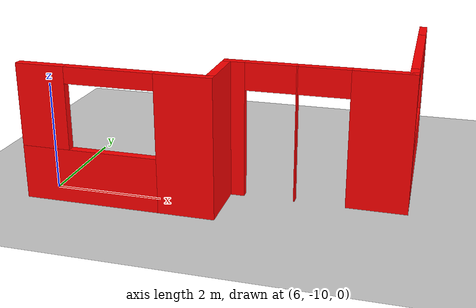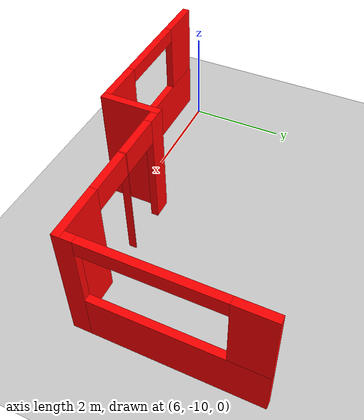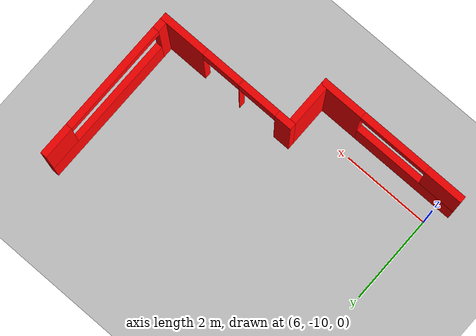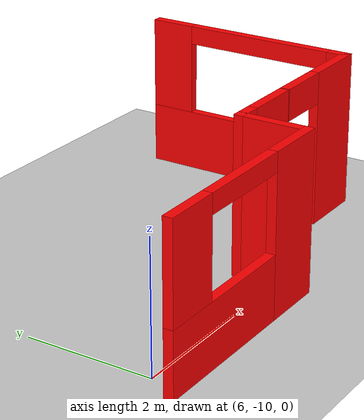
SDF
<sdf version="1.6">
 <world name="default">
  <model name="ground_plane">
   <static>1</static>
   <link name="link">
    <collision name="collision">
     <geometry><plane><normal>0 0 1</normal><size>100 100</size></plane></geometry>
     <surface><friction><ode><mu>100</mu><mu2>50</mu2></ode></friction></surface>
    </collision>
    <visual name="visual">
     <cast_shadows>0</cast_shadows>
     <geometry><plane><normal>0 0 1</normal><size>100 100</size></plane></geometry>
     <material>
      <script><uri>file://media/materials/scripts/gazebo.material</uri><name>Gazebo/Grey</name></script>
     </material>
    </visual>
   </link>
  </model>
  <model name="1floorHouse">
   <link name="Wall_338">
    <pose>7.8602 -3.07643 0 0 -0 1.5708</pose>
    <visual name="Wall_338_Visual_0">
     <pose>-1.61551 0 1.25 0 -0 0</pose>
     <geometry><box><size>0.368981 0.15 2.5</size></box></geometry>
     <material>
      <script><uri>file://media/materials/scripts/gazebo.material</uri><name>Gazebo/Grey</name></script>
      <ambient>1 0 0 1</ambient>
      <diffuse>0.7 0.7 0.7 1</diffuse>
      <specular>0.01 0.01 0.01 1</specular>
      <emissive>0 0 0 1</emissive>
     </material>
    </visual>
    <visual name="Wall_338_Visual_1">
     <pose>0.18449 0 0.5 0 -0 0</pose>
     <geometry><box><size>3.23102 0.15 1</size></box></geometry>
     <material>
      <script><uri>file://media/materials/scripts/gazebo.material</uri><name>Gazebo/Grey</name></script>
      <ambient>1 0 0 1</ambient>
      <diffuse>0.7 0.7 0.7 1</diffuse>
      <specular>0.01 0.01 0.01 1</specular>
      <emissive>0 0 0 1</emissive>
     </material>
    </visual>
    <visual name="Wall_338_Visual_2">
     <pose>1.43449 0 1.75 0 -0 0</pose>
     <geometry><box><size>0.731019 0.15 1.5</size></box></geometry>
     <material>
      <script><uri>file://media/materials/scripts/gazebo.material</uri><name>Gazebo/Grey</name></script>
      <ambient>1 0 0 1</ambient>
      <diffuse>0.7 0.7 0.7 1</diffuse>
      <specular>0.01 0.01 0.01 1</specular>
      <emissive>0 0 0 1</emissive>
     </material>
    </visual>
    <visual name="Wall_338_Visual_3">
     <pose>-0.181019 0 2.35 0 -0 0</pose>
     <geometry><box><size>2.5 0.15 0.3</size></box></geometry>
     <material>
      <script><uri>file://media/materials/scripts/gazebo.material</uri><name>Gazebo/Grey</name></script>
      <ambient>1 0 0 1</ambient>
      <diffuse>0.7 0.7 0.7 1</diffuse>
      <specular>0.01 0.01 0.01 1</specular>
      <emissive>0 0 0 1</emissive>
     </material>
    </visual>
    <collision name="Wall_338_Collision_0">
     <pose>-1.61551 0 1.25 0 -0 0</pose>
     <geometry><box><size>0.368981 0.15 2.5</size></box></geometry>
     <surface>
      <friction>
       <ode><mu>1</mu><mu2>1</mu2><fdir1>0 0 0</fdir1><slip1>0</slip1><slip2>0</slip2></ode>
       <torsional>
        <coefficient>1</coefficient>
        <patch_radius>0</patch_radius>
        <surface_radius>0</surface_radius>
        <use_patch_radius>1</use_patch_radius>
        <ode><slip>0</slip></ode>
       </torsional>
      </friction>
      <bounce><restitution_coefficient>0</restitution_coefficient><threshold>1e+06</threshold></bounce>
      <contact>
       <collide_without_contact>0</collide_without_contact>
       <collide_without_contact_bitmask>1</collide_without_contact_bitmask>
       <collide_bitmask>1</collide_bitmask>
       <ode>
        <soft_cfm>0</soft_cfm>
        <soft_erp>0.2</soft_erp>
        <kp>1e+13</kp>
        <kd>1</kd>
        <max_vel>0.01</max_vel>
        <min_depth>0</min_depth>
       </ode>
       <bullet>
        <split_impulse>1</split_impulse>
        <split_impulse_penetration_threshold>-0.01</split_impulse_penetration_threshold>
        <soft_cfm>0</soft_cfm>
        <soft_erp>0.2</soft_erp>
        <kp>1e+13</kp>
        <kd>1</kd>
       </bullet>
      </contact>
     </surface>
    </collision>
    <collision name="Wall_338_Collision_1">
     <pose>0.18449 0 0.5 0 -0 0</pose>
     <geometry><box><size>3.23102 0.15 1</size></box></geometry>
     <surface>
      <friction>
       <ode><mu>1</mu><mu2>1</mu2><fdir1>0 0 0</fdir1><slip1>0</slip1><slip2>0</slip2></ode>
       <torsional>
        <coefficient>1</coefficient>
        <patch_radius>0</patch_radius>
        <surface_radius>0</surface_radius>
        <use_patch_radius>1</use_patch_radius>
        <ode><slip>0</slip></ode>
       </torsional>
      </friction>
      <bounce><restitution_coefficient>0</restitution_coefficient><threshold>1e+06</threshold></bounce>
      <contact>
       <collide_without_contact>0</collide_without_contact>
       <collide_without_contact_bitmask>1</collide_without_contact_bitmask>
       <collide_bitmask>1</collide_bitmask>
       <ode>
        <soft_cfm>0</soft_cfm>
        <soft_erp>0.2</soft_erp>
        <kp>1e+13</kp>
        <kd>1</kd>
        <max_vel>0.01</max_vel>
        <min_depth>0</min_depth>
       </ode>
       <bullet>
        <split_impulse>1</split_impulse>
        <split_impulse_penetration_threshold>-0.01</split_impulse_penetration_threshold>
        <soft_cfm>0</soft_cfm>
        <soft_erp>0.2</soft_erp>
        <kp>1e+13</kp>
        <kd>1</kd>
       </bullet>
      </contact>
     </surface>
    </collision>
    <collision name="Wall_338_Collision_2">
     <pose>1.43449 0 1.75 0 -0 0</pose>
     <geometry><box><size>0.731019 0.15 1.5</size></box></geometry>
     <surface>
      <friction>
       <ode><mu>1</mu><mu2>1</mu2><fdir1>0 0 0</fdir1><slip1>0</slip1><slip2>0</slip2></ode>
       <torsional>
        <coefficient>1</coefficient>
        <patch_radius>0</patch_radius>
        <surface_radius>0</surface_radius>
        <use_patch_radius>1</use_patch_radius>
        <ode><slip>0</slip></ode>
       </torsional>
      </friction>
      <bounce><restitution_coefficient>0</restitution_coefficient><threshold>1e+06</threshold></bounce>
      <contact>
       <collide_without_contact>0</collide_without_contact>
       <collide_without_contact_bitmask>1</collide_without_contact_bitmask>
       <collide_bitmask>1</collide_bitmask>
       <ode>
        <soft_cfm>0</soft_cfm>
        <soft_erp>0.2</soft_erp>
        <kp>1e+13</kp>
        <kd>1</kd>
        <max_vel>0.01</max_vel>
        <min_depth>0</min_depth>
       </ode>
       <bullet>
        <split_impulse>1</split_impulse>
        <split_impulse_penetration_threshold>-0.01</split_impulse_penetration_threshold>
        <soft_cfm>0</soft_cfm>
        <soft_erp>0.2</soft_erp>
        <kp>1e+13</kp>
        <kd>1</kd>
       </bullet>
      </contact>
     </surface>
    </collision>
    <collision name="Wall_338_Collision_3">
     <pose>-0.181019 0 2.35 0 -0 0</pose>
     <geometry><box><size>2.5 0.15 0.3</size></box></geometry>
     <surface>
      <friction>
       <ode><mu>1</mu><mu2>1</mu2><fdir1>0 0 0</fdir1><slip1>0</slip1><slip2>0</slip2></ode>
       <torsional>
        <coefficient>1</coefficient>
        <patch_radius>0</patch_radius>
        <surface_radius>0</surface_radius>
        <use_patch_radius>1</use_patch_radius>
        <ode><slip>0</slip></ode>
       </torsional>
      </friction>
      <bounce><restitution_coefficient>0</restitution_coefficient><threshold>1e+06</threshold></bounce>
      <contact>
       <collide_without_contact>0</collide_without_contact>
       <collide_without_contact_bitmask>1</collide_without_contact_bitmask>
       <collide_bitmask>1</collide_bitmask>
       <ode>
        <soft_cfm>0</soft_cfm>
        <soft_erp>0.2</soft_erp>
        <kp>1e+13</kp>
        <kd>1</kd>
        <max_vel>0.01</max_vel>
        <min_depth>0</min_depth>
       </ode>
       <bullet>
        <split_impulse>1</split_impulse>
        <split_impulse_penetration_threshold>-0.01</split_impulse_penetration_threshold>
        <soft_cfm>0</soft_cfm>
        <soft_erp>0.2</soft_erp>
        <kp>1e+13</kp>
        <kd>1</kd>
       </bullet>
      </contact>
     </surface>
    </collision>
   </link>
   <link name="Wall_339">
    <pose>6.2852 -4.80143 0 0 -0 3.14159</pose>
    <visual name="Wall_339_Visual_0">
     <pose>-1.11026 0 1.25 0 -0 0</pose>
     <geometry><box><size>1.07948 0.15 2.5</size></box></geometry>
     <material>
      <script><uri>file://media/materials/scripts/gazebo.material</uri><name>Gazebo/Grey</name></script>
      <ambient>1 0 0 1</ambient>
      <diffuse>0.7 0.7 0.7 1</diffuse>
      <specular>0.01 0.01 0.01 1</specular>
      <emissive>0 0 0 1</emissive>
     </material>
    </visual>
    <visual name="Wall_339_Visual_1">
     <pose>0.341197 0 1.25 0 -0 0</pose>
     <geometry><box><size>0.023442 0.15 2.5</size></box></geometry>
     <material>
      <script><uri>file://media/materials/scripts/gazebo.material</uri><name>Gazebo/Grey</name></script>
      <ambient>1 0 0 1</ambient>
      <diffuse>0.7 0.7 0.7 1</diffuse>
      <specular>0.01 0.01 0.01 1</specular>
      <emissive>0 0 0 1</emissive>
     </material>
    </visual>
    <visual name="Wall_339_Visual_3">
     <pose>-0.120524 0 2.25 0 -0 0</pose>
     <geometry><box><size>0.9 0.15 0.5</size></box></geometry>
     <material>
      <script><uri>file://media/materials/scripts/gazebo.material</uri><name>Gazebo/Grey</name></script>
      <ambient>1 0 0 1</ambient>
      <diffuse>0.7 0.7 0.7 1</diffuse>
      <specular>0.01 0.01 0.01 1</specular>
      <emissive>0 0 0 1</emissive>
     </material>
    </visual>
    <visual name="Wall_339_Visual_2">
     <pose>1.45146 0 1.25 0 -0 0</pose>
     <geometry><box><size>0.397083 0.15 2.5</size></box></geometry>
     <material>
      <script><uri>file://media/materials/scripts/gazebo.material</uri><name>Gazebo/Grey</name></script>
      <ambient>1 0 0 1</ambient>
      <diffuse>0.7 0.7 0.7 1</diffuse>
      <specular>0.01 0.01 0.01 1</specular>
      <emissive>0 0 0 1</emissive>
     </material>
    </visual>
    <visual name="Wall_339_Visual_4">
     <pose>0.802917 0 2.25 0 -0 0</pose>
     <geometry><box><size>0.9 0.15 0.5</size></box></geometry>
     <material>
      <script><uri>file://media/materials/scripts/gazebo.material</uri><name>Gazebo/Grey</name></script>
      <ambient>1 0 0 1</ambient>
      <diffuse>0.7 0.7 0.7 1</diffuse>
      <specular>0.01 0.01 0.01 1</specular>
      <emissive>0 0 0 1</emissive>
     </material>
    </visual>
    <collision name="Wall_339_Collision_0">
     <pose>-1.11026 0 1.25 0 -0 0</pose>
     <geometry><box><size>1.07948 0.15 2.5</size></box></geometry>
     <surface>
      <friction>
       <ode><mu>1</mu><mu2>1</mu2><fdir1>0 0 0</fdir1><slip1>0</slip1><slip2>0</slip2></ode>
       <torsional>
        <coefficient>1</coefficient>
        <patch_radius>0</patch_radius>
        <surface_radius>0</surface_radius>
        <use_patch_radius>1</use_patch_radius>
        <ode><slip>0</slip></ode>
       </torsional>
      </friction>
      <bounce><restitution_coefficient>0</restitution_coefficient><threshold>1e+06</threshold></bounce>
      <contact>
       <collide_without_contact>0</collide_without_contact>
       <collide_without_contact_bitmask>1</collide_without_contact_bitmask>
       <collide_bitmask>1</collide_bitmask>
       <ode>
        <soft_cfm>0</soft_cfm>
        <soft_erp>0.2</soft_erp>
        <kp>1e+13</kp>
        <kd>1</kd>
        <max_vel>0.01</max_vel>
        <min_depth>0</min_depth>
       </ode>
       <bullet>
        <split_impulse>1</split_impulse>
        <split_impulse_penetration_threshold>-0.01</split_impulse_penetration_threshold>
        <soft_cfm>0</soft_cfm>
        <soft_erp>0.2</soft_erp>
        <kp>1e+13</kp>
        <kd>1</kd>
       </bullet>
      </contact>
     </surface>
    </collision>
    <collision name="Wall_339_Collision_4">
     <pose>0.802917 0 2.25 0 -0 0</pose>
     <geometry><box><size>0.9 0.15 0.5</size></box></geometry>
     <surface>
      <friction>
       <ode><mu>1</mu><mu2>1</mu2><fdir1>0 0 0</fdir1><slip1>0</slip1><slip2>0</slip2></ode>
       <torsional>
        <coefficient>1</coefficient>
        <patch_radius>0</patch_radius>
        <surface_radius>0</surface_radius>
        <use_patch_radius>1</use_patch_radius>
        <ode><slip>0</slip></ode>
       </torsional>
      </friction>
      <bounce><restitution_coefficient>0</restitution_coefficient><threshold>1e+06</threshold></bounce>
      <contact>
       <collide_without_contact>0</collide_without_contact>
       <collide_without_contact_bitmask>1</collide_without_contact_bitmask>
       <collide_bitmask>1</collide_bitmask>
       <ode>
        <soft_cfm>0</soft_cfm>
        <soft_erp>0.2</soft_erp>
        <kp>1e+13</kp>
        <kd>1</kd>
        <max_vel>0.01</max_vel>
        <min_depth>0</min_depth>
       </ode>
       <bullet>
        <split_impulse>1</split_impulse>
        <split_impulse_penetration_threshold>-0.01</split_impulse_penetration_threshold>
        <soft_cfm>0</soft_cfm>
        <soft_erp>0.2</soft_erp>
        <kp>1e+13</kp>
        <kd>1</kd>
       </bullet>
      </contact>
     </surface>
    </collision>
    <collision name="Wall_339_Collision_1">
     <pose>0.341197 0 1.25 0 -0 0</pose>
     <geometry><box><size>0.023442 0.15 2.5</size></box></geometry>
     <surface>
      <friction>
       <ode><mu>1</mu><mu2>1</mu2><fdir1>0 0 0</fdir1><slip1>0</slip1><slip2>0</slip2></ode>
       <torsional>
        <coefficient>1</coefficient>
        <patch_radius>0</patch_radius>
        <surface_radius>0</surface_radius>
        <use_patch_radius>1</use_patch_radius>
        <ode><slip>0</slip></ode>
       </torsional>
      </friction>
      <bounce><restitution_coefficient>0</restitution_coefficient><threshold>1e+06</threshold></bounce>
      <contact>
       <collide_without_contact>0</collide_without_contact>
       <collide_without_contact_bitmask>1</collide_without_contact_bitmask>
       <collide_bitmask>1</collide_bitmask>
       <ode>
        <soft_cfm>0</soft_cfm>
        <soft_erp>0.2</soft_erp>
        <kp>1e+13</kp>
        <kd>1</kd>
        <max_vel>0.01</max_vel>
        <min_depth>0</min_depth>
       </ode>
       <bullet>
        <split_impulse>1</split_impulse>
        <split_impulse_penetration_threshold>-0.01</split_impulse_penetration_threshold>
        <soft_cfm>0</soft_cfm>
        <soft_erp>0.2</soft_erp>
        <kp>1e+13</kp>
        <kd>1</kd>
       </bullet>
      </contact>
     </surface>
    </collision>
    <collision name="Wall_339_Collision_2">
     <pose>1.45146 0 1.25 0 -0 0</pose>
     <geometry><box><size>0.397083 0.15 2.5</size></box></geometry>
     <surface>
      <friction>
       <ode><mu>1</mu><mu2>1</mu2><fdir1>0 0 0</fdir1><slip1>0</slip1><slip2>0</slip2></ode>
       <torsional>
        <coefficient>1</coefficient>
        <patch_radius>0</patch_radius>
        <surface_radius>0</surface_radius>
        <use_patch_radius>1</use_patch_radius>
        <ode><slip>0</slip></ode>
       </torsional>
      </friction>
      <bounce><restitution_coefficient>0</restitution_coefficient><threshold>1e+06</threshold></bounce>
      <contact>
       <collide_without_contact>0</collide_without_contact>
       <collide_without_contact_bitmask>1</collide_without_contact_bitmask>
       <collide_bitmask>1</collide_bitmask>
       <ode>
        <soft_cfm>0</soft_cfm>
        <soft_erp>0.2</soft_erp>
        <kp>1e+13</kp>
        <kd>1</kd>
        <max_vel>0.01</max_vel>
        <min_depth>0</min_depth>
       </ode>
       <bullet>
        <split_impulse>1</split_impulse>
        <split_impulse_penetration_threshold>-0.01</split_impulse_penetration_threshold>
        <soft_cfm>0</soft_cfm>
        <soft_erp>0.2</soft_erp>
        <kp>1e+13</kp>
        <kd>1</kd>
       </bullet>
      </contact>
     </surface>
    </collision>
    <collision name="Wall_339_Collision_3">
     <pose>-0.120524 0 2.25 0 -0 0</pose>
     <geometry><box><size>0.9 0.15 0.5</size></box></geometry>
     <surface>
      <friction>
       <ode><mu>1</mu><mu2>1</mu2><fdir1>0 0 0</fdir1><slip1>0</slip1><slip2>0</slip2></ode>
       <torsional>
        <coefficient>1</coefficient>
        <patch_radius>0</patch_radius>
        <surface_radius>0</surface_radius>
        <use_patch_radius>1</use_patch_radius>
        <ode><slip>0</slip></ode>
       </torsional>
      </friction>
      <bounce><restitution_coefficient>0</restitution_coefficient><threshold>1e+06</threshold></bounce>
      <contact>
       <collide_without_contact>0</collide_without_contact>
       <collide_without_contact_bitmask>1</collide_without_contact_bitmask>
       <collide_bitmask>1</collide_bitmask>
       <ode>
        <soft_cfm>0</soft_cfm>
        <soft_erp>0.2</soft_erp>
        <kp>1e+13</kp>
        <kd>1</kd>
        <max_vel>0.01</max_vel>
        <min_depth>0</min_depth>
       </ode>
       <bullet>
        <split_impulse>1</split_impulse>
        <split_impulse_penetration_threshold>-0.01</split_impulse_penetration_threshold>
        <soft_cfm>0</soft_cfm>
        <soft_erp>0.2</soft_erp>
        <kp>1e+13</kp>
        <kd>1</kd>
       </bullet>
      </contact>
     </surface>
    </collision>
   </link>
   <link name="Wall_340">
    <pose>4.7102 -5.32643 0 0 0 -1.5708</pose>
    <visual name="Wall_340_Visual">
     <pose>0 0 1.25 0 -0 0</pose>
     <geometry><box><size>1.2 0.15 2.5</size></box></geometry>
     <material>
      <script><uri>file://media/materials/scripts/gazebo.material</uri><name>Gazebo/Grey</name></script>
      <ambient>1 0 0 1</ambient>
      <diffuse>0.7 0.7 0.7 1</diffuse>
      <specular>0.01 0.01 0.01 1</specular>
      <emissive>0 0 0 1</emissive>
     </material>
    </visual>
    <collision name="Wall_340_Collision">
     <pose>0 0 1.25 0 -0 0</pose>
     <geometry><box><size>1.2 0.15 2.5</size></box></geometry>
     <surface>
      <friction>
       <ode><mu>1</mu><mu2>1</mu2><fdir1>0 0 0</fdir1><slip1>0</slip1><slip2>0</slip2></ode>
       <torsional>
        <coefficient>1</coefficient>
        <patch_radius>0</patch_radius>
        <surface_radius>0</surface_radius>
        <use_patch_radius>1</use_patch_radius>
        <ode><slip>0</slip></ode>
       </torsional>
      </friction>
      <bounce><restitution_coefficient>0</restitution_coefficient><threshold>1e+06</threshold></bounce>
      <contact>
       <collide_without_contact>0</collide_without_contact>
       <collide_without_contact_bitmask>1</collide_without_contact_bitmask>
       <collide_bitmask>1</collide_bitmask>
       <ode>
        <soft_cfm>0</soft_cfm>
        <soft_erp>0.2</soft_erp>
        <kp>1e+13</kp>
        <kd>1</kd>
        <max_vel>0.01</max_vel>
        <min_depth>0</min_depth>
       </ode>
       <bullet>
        <split_impulse>1</split_impulse>
        <split_impulse_penetration_threshold>-0.01</split_impulse_penetration_threshold>
        <soft_cfm>0</soft_cfm>
        <soft_erp>0.2</soft_erp>
        <kp>1e+13</kp>
        <kd>1</kd>
       </bullet>
      </contact>
     </surface>
    </collision>
   </link>
   <link name="Wall_341">
    <pose>3.0352 -5.85143 0 0 -0 3.14159</pose>
    <visual name="Wall_341_Visual_1">
     <pose>0.505727 0 0.5 0 -0 0</pose>
     <geometry><box><size>2.48855 0.15 1</size></box></geometry>
     <material>
      <script><uri>file://media/materials/scripts/gazebo.material</uri><name>Gazebo/Grey</name></script>
      <ambient>1 0 0 1</ambient>
      <diffuse>0.7 0.7 0.7 1</diffuse>
      <specular>0.01 0.01 0.01 1</specular>
      <emissive>0 0 0 1</emissive>
     </material>
    </visual>
    <visual name="Wall_341_Visual_0">
     <pose>-1.24427 0 1.25 0 -0 0</pose>
     <geometry><box><size>1.01145 0.15 2.5</size></box></geometry>
     <material>
      <script><uri>file://media/materials/scripts/gazebo.material</uri><name>Gazebo/Grey</name></script>
      <ambient>1 0 0 1</ambient>
      <diffuse>0.7 0.7 0.7 1</diffuse>
      <specular>0.01 0.01 0.01 1</specular>
      <emissive>0 0 0 1</emissive>
     </material>
    </visual>
    <visual name="Wall_341_Visual_2">
     <pose>1.30573 0 1.75 0 -0 0</pose>
     <geometry><box><size>0.888547 0.15 1.5</size></box></geometry>
     <material>
      <script><uri>file://media/materials/scripts/gazebo.material</uri><name>Gazebo/Grey</name></script>
      <ambient>1 0 0 1</ambient>
      <diffuse>0.7 0.7 0.7 1</diffuse>
      <specular>0.01 0.01 0.01 1</specular>
      <emissive>0 0 0 1</emissive>
     </material>
    </visual>
    <visual name="Wall_341_Visual_3">
     <pose>0.061453 0 2.35 0 -0 0</pose>
     <geometry><box><size>1.6 0.15 0.3</size></box></geometry>
     <material>
      <script><uri>file://media/materials/scripts/gazebo.material</uri><name>Gazebo/Grey</name></script>
      <ambient>1 0 0 1</ambient>
      <diffuse>0.7 0.7 0.7 1</diffuse>
      <specular>0.01 0.01 0.01 1</specular>
      <emissive>0 0 0 1</emissive>
     </material>
    </visual>
    <collision name="Wall_341_Collision_0">
     <pose>-1.24427 0 1.25 0 -0 0</pose>
     <geometry><box><size>1.01145 0.15 2.5</size></box></geometry>
     <surface>
      <friction>
       <ode><mu>1</mu><mu2>1</mu2><fdir1>0 0 0</fdir1><slip1>0</slip1><slip2>0</slip2></ode>
       <torsional>
        <coefficient>1</coefficient>
        <patch_radius>0</patch_radius>
        <surface_radius>0</surface_radius>
        <use_patch_radius>1</use_patch_radius>
        <ode><slip>0</slip></ode>
       </torsional>
      </friction>
      <bounce><restitution_coefficient>0</restitution_coefficient><threshold>1e+06</threshold></bounce>
      <contact>
       <collide_without_contact>0</collide_without_contact>
       <collide_without_contact_bitmask>1</collide_without_contact_bitmask>
       <collide_bitmask>1</collide_bitmask>
       <ode>
        <soft_cfm>0</soft_cfm>
        <soft_erp>0.2</soft_erp>
        <kp>1e+13</kp>
        <kd>1</kd>
        <max_vel>0.01</max_vel>
        <min_depth>0</min_depth>
       </ode>
       <bullet>
        <split_impulse>1</split_impulse>
        <split_impulse_penetration_threshold>-0.01</split_impulse_penetration_threshold>
        <soft_cfm>0</soft_cfm>
        <soft_erp>0.2</soft_erp>
        <kp>1e+13</kp>
        <kd>1</kd>
       </bullet>
      </contact>
     </surface>
    </collision>
    <collision name="Wall_341_Collision_1">
     <pose>0.505727 0 0.5 0 -0 0</pose>
     <geometry><box><size>2.48855 0.15 1</size></box></geometry>
     <surface>
      <friction>
       <ode><mu>1</mu><mu2>1</mu2><fdir1>0 0 0</fdir1><slip1>0</slip1><slip2>0</slip2></ode>
       <torsional>
        <coefficient>1</coefficient>
        <patch_radius>0</patch_radius>
        <surface_radius>0</surface_radius>
        <use_patch_radius>1</use_patch_radius>
        <ode><slip>0</slip></ode>
       </torsional>
      </friction>
      <bounce><restitution_coefficient>0</restitution_coefficient><threshold>1e+06</threshold></bounce>
      <contact>
       <collide_without_contact>0</collide_without_contact>
       <collide_without_contact_bitmask>1</collide_without_contact_bitmask>
       <collide_bitmask>1</collide_bitmask>
       <ode>
        <soft_cfm>0</soft_cfm>
        <soft_erp>0.2</soft_erp>
        <kp>1e+13</kp>
        <kd>1</kd>
        <max_vel>0.01</max_vel>
        <min_depth>0</min_depth>
       </ode>
       <bullet>
        <split_impulse>1</split_impulse>
        <split_impulse_penetration_threshold>-0.01</split_impulse_penetration_threshold>
        <soft_cfm>0</soft_cfm>
        <soft_erp>0.2</soft_erp>
        <kp>1e+13</kp>
        <kd>1</kd>
       </bullet>
      </contact>
     </surface>
    </collision>
    <collision name="Wall_341_Collision_2">
     <pose>1.30573 0 1.75 0 -0 0</pose>
     <geometry><box><size>0.888547 0.15 1.5</size></box></geometry>
     <surface>
      <friction>
       <ode><mu>1</mu><mu2>1</mu2><fdir1>0 0 0</fdir1><slip1>0</slip1><slip2>0</slip2></ode>
       <torsional>
        <coefficient>1</coefficient>
        <patch_radius>0</patch_radius>
        <surface_radius>0</surface_radius>
        <use_patch_radius>1</use_patch_radius>
        <ode><slip>0</slip></ode>
       </torsional>
      </friction>
      <bounce><restitution_coefficient>0</restitution_coefficient><threshold>1e+06</threshold></bounce>
      <contact>
       <collide_without_contact>0</collide_without_contact>
       <collide_without_contact_bitmask>1</collide_without_contact_bitmask>
       <collide_bitmask>1</collide_bitmask>
       <ode>
        <soft_cfm>0</soft_cfm>
        <soft_erp>0.2</soft_erp>
        <kp>1e+13</kp>
        <kd>1</kd>
        <max_vel>0.01</max_vel>
        <min_depth>0</min_depth>
       </ode>
       <bullet>
        <split_impulse>1</split_impulse>
        <split_impulse_penetration_threshold>-0.01</split_impulse_penetration_threshold>
        <soft_cfm>0</soft_cfm>
        <soft_erp>0.2</soft_erp>
        <kp>1e+13</kp>
        <kd>1</kd>
       </bullet>
      </contact>
     </surface>
    </collision>
    <collision name="Wall_341_Collision_3">
     <pose>0.061453 0 2.35 0 -0 0</pose>
     <geometry><box><size>1.6 0.15 0.3</size></box></geometry>
     <surface>
      <friction>
       <ode><mu>1</mu><mu2>1</mu2><fdir1>0 0 0</fdir1><slip1>0</slip1><slip2>0</slip2></ode>
       <torsional>
        <coefficient>1</coefficient>
        <patch_radius>0</patch_radius>
        <surface_radius>0</surface_radius>
        <use_patch_radius>1</use_patch_radius>
        <ode><slip>0</slip></ode>
       </torsional>
      </friction>
      <bounce><restitution_coefficient>0</restitution_coefficient><threshold>1e+06</threshold></bounce>
      <contact>
       <collide_without_contact>0</collide_without_contact>
       <collide_without_contact_bitmask>1</collide_without_contact_bitmask>
       <collide_bitmask>1</collide_bitmask>
       <ode>
        <soft_cfm>0</soft_cfm>
        <soft_erp>0.2</soft_erp>
        <kp>1e+13</kp>
        <kd>1</kd>
        <max_vel>0.01</max_vel>
        <min_depth>0</min_depth>
       </ode>
       <bullet>
        <split_impulse>1</split_impulse>
        <split_impulse_penetration_threshold>-0.01</split_impulse_penetration_threshold>
        <soft_cfm>0</soft_cfm>
        <soft_erp>0.2</soft_erp>
        <kp>1e+13</kp>
        <kd>1</kd>
       </bullet>
      </contact>
     </surface>
    </collision>
   </link>
   <static>1</static>
   <pose>4.39833 -4.61297 0 0 -0 0</pose>
  </model>
 </world>
</sdf>
